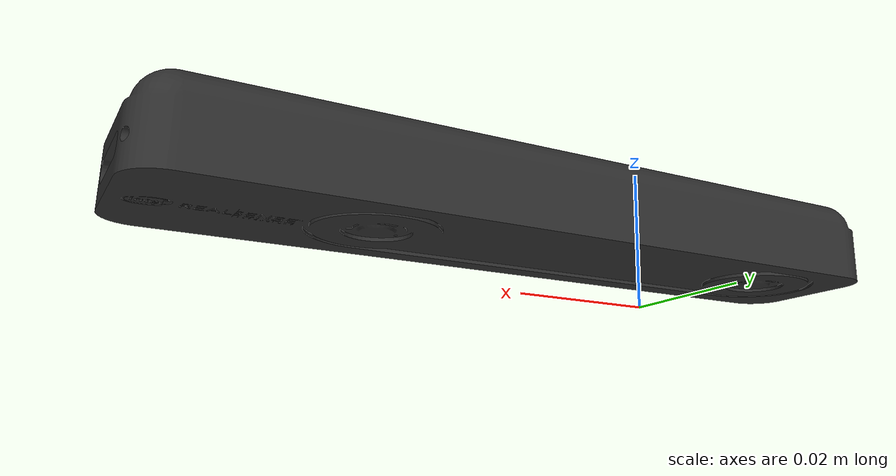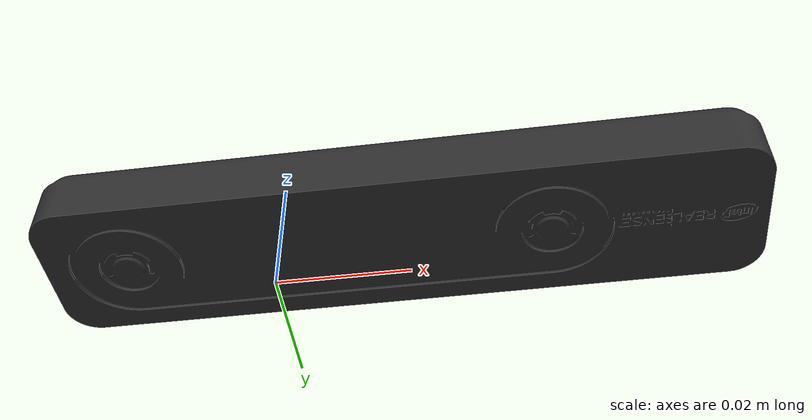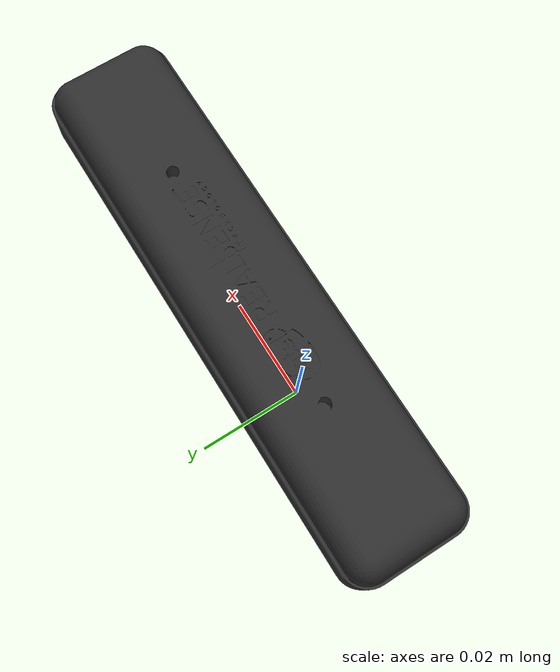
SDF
<?xml version="1.0" ?>
<sdf version="1.9">
    <model name="realsense_t265">

        <link name="realsense_t265/base">
            <self_collide>false</self_collide>
            <pose>0.008851994473352736 5.456759275762921e-06 0.0060441513641385685 0.0 -0.0 0.0</pose>
            <inertial>
                <pose>0.0 0.0 0.0 0 0 0</pose>
                <mass>0.07523827760624975</mass>
                <inertia>
                    <ixx>4.307759782578426e-06</ixx>
                    <ixy>3.485554600095884e-09</ixy>
                    <ixz>-9.081708575278333e-08</ixz>
                    <iyy>7.206777466977592e-05</iyy>
                    <iyz>1.177312171218151e-09</iyz>
                    <izz>7.476239997019313e-05</izz>
                </inertia>
            </inertial>
            <collision name="base_link_collision">
                <geometry>
                    <mesh>
                        <uri>model://realsense_t265/meshes/CAD/base_link.stl</uri>
                        <scale>0.001 0.001 0.001</scale>
                    </mesh>
                </geometry>
            </collision>
            <visual name="base_link_visual">
                <geometry>
                    <mesh>
                        <uri>model://realsense_t265/meshes/CAD/base_link.stl</uri>
                        <scale>0.001 0.001 0.001</scale>
                    </mesh>
                </geometry>
                <material>
                    <ambient>0.175 0.175 0.175 1.0</ambient>
                    <diffuse>0.175 0.175 0.175 1.0</diffuse>
                    <specular>0.175 0.175 0.175 1.0</specular>
                </material>
            </visual>

            <!-- Fisheye Camera 1 -->
            <sensor name="fishEye1" type="wideanglecamera">
                <pose>0.032 0 0 -1.5707963267948966 1.5707963267948966 0</pose>
                <camera>
                    <horizontal_fov>3.14</horizontal_fov>
                    <image>
                        <width>800</width>
                        <height>600</height>
                    </image>
                    <clip>
                        <near>0.1</near>
                        <far>100</far>
                    </clip>
                    <lens>
                        <type>custom</type>
                        <custom_function>
                            <c1>1.05</c1>
                            <c2>4</c2>
                            <f>1.0</f>
                            <fun>tan</fun>
                        </custom_function>
                        <scale_to_hfov>true</scale_to_hfov>
                        <cutoff_angle>3.1415</cutoff_angle>
                        <env_texture_size>512</env_texture_size>
                        <intrinsics>
                            <fx>285.5480041503906</fx>
                            <fy>285.3793029785156</fy>
                            <cx>416.00531005859375</cx>
                            <cy>403.38909912109375</cy>
                        </intrinsics>
                    </lens>
                    <distortion>
                        <k1>-0.007419134024530649</k1>
                        <k2>0.041209351271390915</k2>
                        <k3>-0.03811917081475258</k3>
                        <p1>0.006366158835589886</p1>
                        <p2>0.0</p2>
                    </distortion>
                </camera>
                <always_on>true</always_on>
                <update_rate>30</update_rate>
                <topic>/camera/fisheye1</topic>
            </sensor>

            <!-- Fisheye Camera 2 -->
            <sensor name="fishEye2" type="wideanglecamera">
                <pose>-0.032 0 0 -1.5707963267948966 1.5707963267948966 0</pose>
                <camera>
                    <horizontal_fov>3.14</horizontal_fov>
                    <image>
                        <width>800</width>
                        <height>600</height>
                    </image>
                    <clip>
                        <near>0.1</near>
                        <far>100</far>
                    </clip>
                    <lens>
                        <type>custom</type>
                        <custom_function>
                            <c1>1.05</c1>
                            <c2>4</c2>
                            <f>1.0</f>
                            <fun>tan</fun>
                        </custom_function>
                        <scale_to_hfov>true</scale_to_hfov>
                        <cutoff_angle>3.1415</cutoff_angle>
                        <env_texture_size>512</env_texture_size>
                        <intrinsics>
                            <fx>285.5480041503906</fx>
                            <fy>285.3793029785156</fy>
                            <cx>416.00531005859375</cx>
                            <cy>403.38909912109375</cy>
                        </intrinsics>
                    </lens>
                    <distortion>
                        <k1>-0.007419134024530649</k1>
                        <k2>0.041209351271390915</k2>
                        <k3>-0.03811917081475258</k3>
                        <p1>0.006366158835589886</p1>
                        <p2>0.0</p2>
                    </distortion>
                </camera>
                <always_on>true</always_on>
                <update_rate>30</update_rate>
                <topic>/camera/fisheye2</topic>
            </sensor>

            <!-- Gyroscope Sensor -->
            <sensor name="gyro_sensor" type="imu">
                <pose>-0.0022 0 0.00655 0 0 0</pose>
                <always_on>1</always_on>
                <update_rate>200</update_rate>
                <topic>/camera/gyro/sample</topic>
                <imu>
                    <angular_velocity>
                        <x>
                            <noise type="gaussian">
                                <mean>0</mean>
                                <stddev>0.00087266</stddev>
                                <dynamic_bias_stddev>0.0001</dynamic_bias_stddev>
                                <dynamic_bias_correlation_time>1000</dynamic_bias_correlation_time>
                            </noise>
                        </x>
                        <y>
                            <noise type="gaussian">
                                <mean>0</mean>
                                <stddev>0.00087266</stddev>
                                <dynamic_bias_stddev>0.0001</dynamic_bias_stddev>
                                <dynamic_bias_correlation_time>1000</dynamic_bias_correlation_time>
                            </noise>
                        </y>
                        <z>
                            <noise type="gaussian">
                                <mean>0</mean>
                                <stddev>0.00087266</stddev>
                                <dynamic_bias_stddev>0.0001</dynamic_bias_stddev>
                                <dynamic_bias_correlation_time>1000</dynamic_bias_correlation_time>
                            </noise>
                        </z>
                    </angular_velocity>
                </imu>
            </sensor>

            <!-- Accelerometer Sensor -->
            <sensor name="accel_sensor" type="imu">
                <pose>-0.0022 0 0.00655 0 0 0</pose>
                <always_on>1</always_on>
                <update_rate>200</update_rate>
                <topic>/camera/accel/sample</topic>
                <imu>
                    <linear_acceleration>
                        <x>
                            <noise type="gaussian">
                                <mean>0</mean>
                                <stddev>0.03924</stddev>
                                <dynamic_bias_stddev>0.0006</dynamic_bias_stddev>
                                <dynamic_bias_correlation_time>300</dynamic_bias_correlation_time>
                            </noise>
                        </x>
                        <y>
                            <noise type="gaussian">
                                <mean>0</mean>
                                <stddev>0.03924</stddev>
                                <dynamic_bias_stddev>0.0006</dynamic_bias_stddev>
                                <dynamic_bias_correlation_time>300</dynamic_bias_correlation_time>
                            </noise>
                        </y>
                        <z>
                            <noise type="gaussian">
                                <mean>0</mean>
                                <stddev>0.03924</stddev>
                                <dynamic_bias_stddev>0.0006</dynamic_bias_stddev>
                                <dynamic_bias_correlation_time>300</dynamic_bias_correlation_time>
                            </noise>
                        </z>
                    </linear_acceleration>
                </imu>
            </sensor>

        </link>

    </model>
</sdf>
